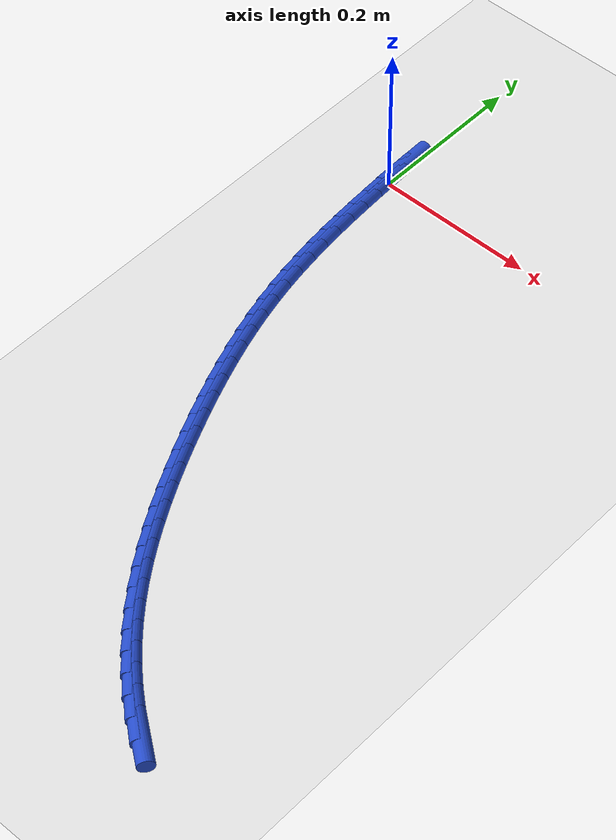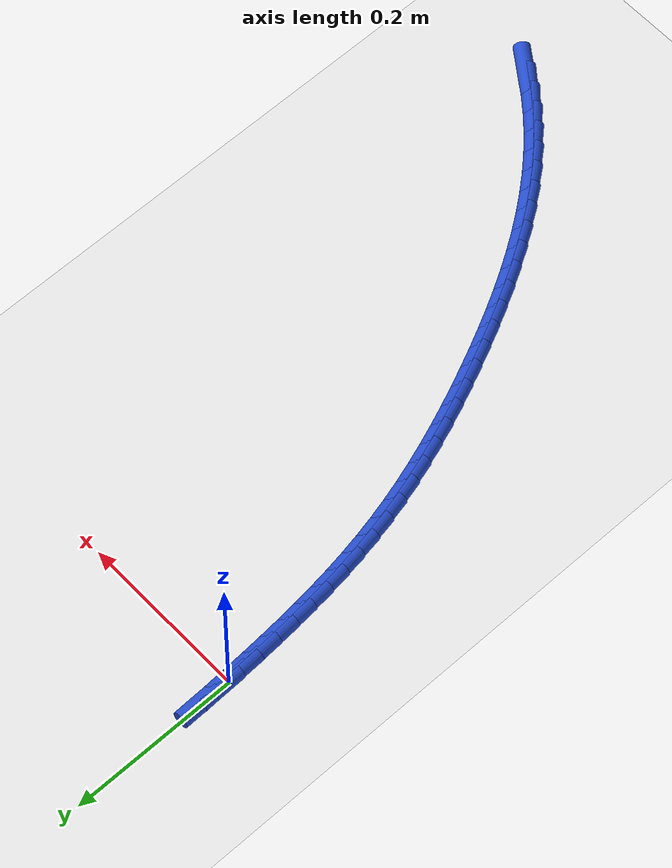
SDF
<sdf version="1.6">
 <world name="default">
  <model name="ground_plane">
   <static>1</static>
   <link name="link">
    <collision name="collision">
     <geometry><plane><normal>0 0 1</normal><size>100 100</size></plane></geometry>
     <surface><friction><ode><mu>100</mu><mu2>50</mu2></ode></friction></surface>
    </collision>
    <visual name="visual">
     <cast_shadows>0</cast_shadows>
     <geometry><plane><normal>0 0 1</normal><size>100 100</size></plane></geometry>
     <material>
      <script><uri>file://media/materials/scripts/gazebo.material</uri><name>Gazebo/WhiteGlow</name></script>
     </material>
    </visual>
   </link>
  </model>
  <model name="line">
   <link name="link_0">
    <pose>-7.806255641895632e-18 -2.7755575615628914e-17 0.01 0 1.57 -1.5313961069417978</pose>
    <collision name="collision">
     <geometry><cylinder><radius>0.01</radius><length>0.08</length></cylinder></geometry>
    </collision>
    <visual name="visual">
     <material>
      <script><name>Gazebo/Blue</name><uri>file://media/materials/scripts/gazebo.material</uri></script>
     </material>
     <geometry><cylinder><radius>0.01</radius><length>0.08</length></cylinder></geometry>
    </visual>
   </link>
   <link name="link_1">
    <pose>-0.0010407498841887648 0.026401154278248604 0.01 0 1.57 -1.5477498399603729</pose>
    <collision name="collision">
     <geometry><cylinder><radius>0.01</radius><length>0.08</length></cylinder></geometry>
    </collision>
    <visual name="visual">
     <material>
      <script><name>Gazebo/Blue</name><uri>file://media/materials/scripts/gazebo.material</uri></script>
     </material>
     <geometry><cylinder><radius>0.01</radius><length>0.08</length></cylinder></geometry>
    </visual>
   </link>
   <link name="link_248">
    <pose>0.3231307571067282 -0.7305806188301729 0.01 0 1.57 -0.6294634969739159</pose>
    <collision name="collision">
     <geometry><cylinder><radius>0.01</radius><length>0.08</length></cylinder></geometry>
    </collision>
    <visual name="visual">
     <material>
      <script><name>Gazebo/Blue</name><uri>file://media/materials/scripts/gazebo.material</uri></script>
     </material>
     <geometry><cylinder><radius>0.01</radius><length>0.08</length></cylinder></geometry>
    </visual>
   </link>
   <link name="link_249">
    <pose>0.30178307036011076 -0.7150332407911966 0.01 0 1.57 -0.6848213265395684</pose>
    <collision name="collision">
     <geometry><cylinder><radius>0.01</radius><length>0.08</length></cylinder></geometry>
    </collision>
    <visual name="visual">
     <material>
      <script><name>Gazebo/Blue</name><uri>file://media/materials/scripts/gazebo.material</uri></script>
     </material>
     <geometry><cylinder><radius>0.01</radius><length>0.08</length></cylinder></geometry>
    </visual>
   </link>
   <link name="link_250">
    <pose>0.2815213969309099 -0.698486204768513 0.01 0 1.57 -0.7378898531658162</pose>
    <collision name="collision">
     <geometry><cylinder><radius>0.01</radius><length>0.08</length></cylinder></geometry>
    </collision>
    <visual name="visual">
     <material>
      <script><name>Gazebo/Blue</name><uri>file://media/materials/scripts/gazebo.material</uri></script>
     </material>
     <geometry><cylinder><radius>0.01</radius><length>0.08</length></cylinder></geometry>
    </visual>
   </link>
   <link name="link_251">
    <pose>0.2622945949332053 -0.6810046671964006 0.01 0 1.57 -0.7883442762952446</pose>
    <collision name="collision">
     <geometry><cylinder><radius>0.01</radius><length>0.08</length></cylinder></geometry>
    </collision>
    <visual name="visual">
     <material>
      <script><name>Gazebo/Blue</name><uri>file://media/materials/scripts/gazebo.material</uri></script>
     </material>
     <geometry><cylinder><radius>0.01</radius><length>0.08</length></cylinder></geometry>
    </visual>
   </link>
   <link name="link_252">
    <pose>0.24405152248107598 -0.6626537845091377 0.01 0 1.57 -0.8359394381130583</pose>
    <collision name="collision">
     <geometry><cylinder><radius>0.01</radius><length>0.08</length></cylinder></geometry>
    </collision>
    <visual name="visual">
     <material>
      <script><name>Gazebo/Blue</name><uri>file://media/materials/scripts/gazebo.material</uri></script>
     </material>
     <geometry><cylinder><radius>0.01</radius><length>0.08</length></cylinder></geometry>
    </visual>
   </link>
   <link name="link_253">
    <pose>0.22674103768860293 -0.6434987131410044 0.01 0 1.57 -0.8805058639360278</pose>
    <collision name="collision">
     <geometry><cylinder><radius>0.01</radius><length>0.08</length></cylinder></geometry>
    </collision>
    <visual name="visual">
     <material>
      <script><name>Gazebo/Blue</name><uri>file://media/materials/scripts/gazebo.material</uri></script>
     </material>
     <geometry><cylinder><radius>0.01</radius><length>0.08</length></cylinder></geometry>
    </visual>
   </link>
   <link name="link_254">
    <pose>0.2103119986698654 -0.6236046095262786 0.01 0 1.57 -0.9219414898770469</pose>
    <collision name="collision">
     <geometry><cylinder><radius>0.01</radius><length>0.08</length></cylinder></geometry>
    </collision>
    <visual name="visual">
     <material>
      <script><name>Gazebo/Blue</name><uri>file://media/materials/scripts/gazebo.material</uri></script>
     </material>
     <geometry><cylinder><radius>0.01</radius><length>0.08</length></cylinder></geometry>
    </visual>
   </link>
   <link name="link_255">
    <pose>0.194713263538943 -0.6030366300992392 0.01 0 1.57 -0.9602008214332004</pose>
    <collision name="collision">
     <geometry><cylinder><radius>0.01</radius><length>0.08</length></cylinder></geometry>
    </collision>
    <visual name="visual">
     <material>
      <script><name>Gazebo/Blue</name><uri>file://media/materials/scripts/gazebo.material</uri></script>
     </material>
     <geometry><cylinder><radius>0.01</radius><length>0.08</length></cylinder></geometry>
    </visual>
   </link>
   <link name="link_256">
    <pose>0.17989369040991565 -0.5818599312941654 0.01 0 1.57 -0.9952830658638413</pose>
    <collision name="collision">
     <geometry><cylinder><radius>0.01</radius><length>0.08</length></cylinder></geometry>
    </collision>
    <visual name="visual">
     <material>
      <script><name>Gazebo/Blue</name><uri>file://media/materials/scripts/gazebo.material</uri></script>
     </material>
     <geometry><cylinder><radius>0.01</radius><length>0.08</length></cylinder></geometry>
    </visual>
   </link>
   <link name="link_257">
    <pose>0.165802137396863 -0.5601396695453357 0.01 0 1.57 -1.0272204137376084</pose>
    <collision name="collision">
     <geometry><cylinder><radius>0.01</radius><length>0.08</length></cylinder></geometry>
    </collision>
    <visual name="visual">
     <material>
      <script><name>Gazebo/Blue</name><uri>file://media/materials/scripts/gazebo.material</uri></script>
     </material>
     <geometry><cylinder><radius>0.01</radius><length>0.08</length></cylinder></geometry>
    </visual>
   </link>
   <link name="link_258">
    <pose>0.15238746261386485 -0.5379410012870287 0.01 0 1.57 -1.0560672382282705</pose>
    <collision name="collision">
     <geometry><cylinder><radius>0.01</radius><length>0.08</length></cylinder></geometry>
    </collision>
    <visual name="visual">
     <material>
      <script><name>Gazebo/Blue</name><uri>file://media/materials/scripts/gazebo.material</uri></script>
     </material>
     <geometry><cylinder><radius>0.01</radius><length>0.08</length></cylinder></geometry>
    </visual>
   </link>
   <link name="link_259">
    <pose>0.13959852417500096 -0.5153290829535236 0.01 0 1.57 -1.0818906183020056</pose>
    <collision name="collision">
     <geometry><cylinder><radius>0.01</radius><length>0.08</length></cylinder></geometry>
    </collision>
    <visual name="visual">
     <material>
      <script><name>Gazebo/Blue</name><uri>file://media/materials/scripts/gazebo.material</uri></script>
     </material>
     <geometry><cylinder><radius>0.01</radius><length>0.08</length></cylinder></geometry>
    </visual>
   </link>
   <link name="link_260">
    <pose>0.12738418019435105 -0.49236907097909915 0.01 0 1.57 -1.1047623129641644</pose>
    <collision name="collision">
     <geometry><cylinder><radius>0.01</radius><length>0.08</length></cylinder></geometry>
    </collision>
    <visual name="visual">
     <material>
      <script><name>Gazebo/Blue</name><uri>file://media/materials/scripts/gazebo.material</uri></script>
     </material>
     <geometry><cylinder><radius>0.01</radius><length>0.08</length></cylinder></geometry>
    </visual>
   </link>
   <link name="link_261">
    <pose>0.11569328878599457 -0.46912612179803337 0.01 0 1.57 -1.1247521244726826</pose>
    <collision name="collision">
     <geometry><cylinder><radius>0.01</radius><length>0.08</length></cylinder></geometry>
    </collision>
    <visual name="visual">
     <material>
      <script><name>Gazebo/Blue</name><uri>file://media/materials/scripts/gazebo.material</uri></script>
     </material>
     <geometry><cylinder><radius>0.01</radius><length>0.08</length></cylinder></geometry>
    </visual>
   </link>
   <link name="link_262">
    <pose>0.10447470806401202 -0.4456653918446065 0.01 0 1.57 -1.1420171484466881</pose>
    <collision name="collision">
     <geometry><cylinder><radius>0.01</radius><length>0.08</length></cylinder></geometry>
    </collision>
    <visual name="visual">
     <material>
      <script><name>Gazebo/Blue</name><uri>file://media/materials/scripts/gazebo.material</uri></script>
     </material>
     <geometry><cylinder><radius>0.01</radius><length>0.08</length></cylinder></geometry>
    </visual>
   </link>
   <link name="link_263">
    <pose>0.09367936650729065 -0.42205065406609027 0.01 0 1.57 -1.1587808933841062</pose>
    <collision name="collision">
     <geometry><cylinder><radius>0.01</radius><length>0.08</length></cylinder></geometry>
    </collision>
    <visual name="visual">
     <material>
      <script><name>Gazebo/Blue</name><uri>file://media/materials/scripts/gazebo.material</uri></script>
     </material>
     <geometry><cylinder><radius>0.01</radius><length>0.08</length></cylinder></geometry>
    </visual>
   </link>
   <link name="link_264">
    <pose>0.08330571626151337 -0.3983139245062157 0.01 0 1.57 -1.1772549622798039</pose>
    <collision name="collision">
     <geometry><cylinder><radius>0.01</radius><length>0.08</length></cylinder></geometry>
    </collision>
    <visual name="visual">
     <material>
      <script><name>Gazebo/Blue</name><uri>file://media/materials/scripts/gazebo.material</uri></script>
     </material>
     <geometry><cylinder><radius>0.01</radius><length>0.08</length></cylinder></geometry>
    </visual>
   </link>
   <link name="link_265">
    <pose>0.0733996805743234 -0.3744554974307524 0.01 0 1.57 -1.1975740225772993</pose>
    <collision name="collision">
     <geometry><cylinder><radius>0.01</radius><length>0.08</length></cylinder></geometry>
    </collision>
    <visual name="visual">
     <material>
      <script><name>Gazebo/Blue</name><uri>file://media/materials/scripts/gazebo.material</uri></script>
     </material>
     <geometry><cylinder><radius>0.01</radius><length>0.08</length></cylinder></geometry>
    </visual>
   </link>
   <link name="link_266">
    <pose>0.06400924254520082 -0.35047429064358254 0.01 0 1.57 -1.219778278962894</pose>
    <collision name="collision">
     <geometry><cylinder><radius>0.01</radius><length>0.08</length></cylinder></geometry>
    </collision>
    <visual name="visual">
     <material>
      <script><name>Gazebo/Blue</name><uri>file://media/materials/scripts/gazebo.material</uri></script>
     </material>
     <geometry><cylinder><radius>0.01</radius><length>0.08</length></cylinder></geometry>
    </visual>
   </link>
   <link name="link_267">
    <pose>0.05518238527362583 -0.32636922194858836 0.01 0 1.57 -1.2439056441414968</pose>
    <collision name="collision">
     <geometry><cylinder><radius>0.01</radius><length>0.08</length></cylinder></geometry>
    </collision>
    <visual name="visual">
     <material>
      <script><name>Gazebo/Blue</name><uri>file://media/materials/scripts/gazebo.material</uri></script>
     </material>
     <geometry><cylinder><radius>0.01</radius><length>0.08</length></cylinder></geometry>
    </visual>
   </link>
   <link name="link_268">
    <pose>0.046967091859078526 -0.3021392091496521 0.01 0 1.57 -1.2699893580499169</pose>
    <collision name="collision">
     <geometry><cylinder><radius>0.01</radius><length>0.08</length></cylinder></geometry>
    </collision>
    <visual name="visual">
     <material>
      <script><name>Gazebo/Blue</name><uri>file://media/materials/scripts/gazebo.material</uri></script>
     </material>
     <geometry><cylinder><radius>0.01</radius><length>0.08</length></cylinder></geometry>
    </visual>
   </link>
   <link name="link_269">
    <pose>0.039411345401039063 -0.27778317005065584 0.01 0 1.57 -1.2980552279116246</pose>
    <collision name="collision">
     <geometry><cylinder><radius>0.01</radius><length>0.08</length></cylinder></geometry>
    </collision>
    <visual name="visual">
     <material>
      <script><name>Gazebo/Blue</name><uri>file://media/materials/scripts/gazebo.material</uri></script>
     </material>
     <geometry><cylinder><radius>0.01</radius><length>0.08</length></cylinder></geometry>
    </visual>
   </link>
   <link name="link_270">
    <pose>0.032563128998987376 -0.2533000224554813 0.01 0 1.57 -1.3281184992201023</pose>
    <collision name="collision">
     <geometry><cylinder><radius>0.01</radius><length>0.08</length></cylinder></geometry>
    </collision>
    <visual name="visual">
     <material>
      <script><name>Gazebo/Blue</name><uri>file://media/materials/scripts/gazebo.material</uri></script>
     </material>
     <geometry><cylinder><radius>0.01</radius><length>0.08</length></cylinder></geometry>
    </visual>
   </link>
   <link name="link_271">
    <pose>0.02647042575240403 -0.228688684168012 0.01 0 1.57 -1.3598567806479787</pose>
    <collision name="collision">
     <geometry><cylinder><radius>0.01</radius><length>0.08</length></cylinder></geometry>
    </collision>
    <visual name="visual">
     <material>
      <script><name>Gazebo/Blue</name><uri>file://media/materials/scripts/gazebo.material</uri></script>
     </material>
     <geometry><cylinder><radius>0.01</radius><length>0.08</length></cylinder></geometry>
    </visual>
   </link>
   <link name="link_272">
    <pose>0.021172678313014857 -0.20394729182919027 0.01 0 1.57 -1.3903991742608948</pose>
    <collision name="collision">
     <geometry><cylinder><radius>0.01</radius><length>0.08</length></cylinder></geometry>
    </collision>
    <visual name="visual">
     <material>
      <script><name>Gazebo/Blue</name><uri>file://media/materials/scripts/gazebo.material</uri></script>
     </material>
     <geometry><cylinder><radius>0.01</radius><length>0.08</length></cylinder></geometry>
    </visual>
   </link>
   <link name="link_273">
    <pose>0.01663504838478031 -0.17906718787839537 0.01 0 1.57 -1.4181603901816322</pose>
    <collision name="collision">
     <geometry><cylinder><radius>0.01</radius><length>0.08</length></cylinder></geometry>
    </collision>
    <visual name="visual">
     <material>
      <script><name>Gazebo/Blue</name><uri>file://media/materials/scripts/gazebo.material</uri></script>
     </material>
     <geometry><cylinder><radius>0.01</radius><length>0.08</length></cylinder></geometry>
    </visual>
   </link>
   <link name="link_274">
    <pose>0.012784473161626213 -0.15403621850147609 0.01 0 1.57 -1.4430174755052716</pose>
    <collision name="collision">
     <geometry><cylinder><radius>0.01</radius><length>0.08</length></cylinder></geometry>
    </collision>
    <visual name="visual">
     <material>
      <script><name>Gazebo/Blue</name><uri>file://media/materials/scripts/gazebo.material</uri></script>
     </material>
     <geometry><cylinder><radius>0.01</radius><length>0.08</length></cylinder></geometry>
    </visual>
   </link>
   <link name="link_275">
    <pose>0.009547574596599155 -0.12884220105037275 0.01 0 1.57 -1.4648999101912104</pose>
    <collision name="collision">
     <geometry><cylinder><radius>0.01</radius><length>0.08</length></cylinder></geometry>
    </collision>
    <visual name="visual">
     <material>
      <script><name>Gazebo/Blue</name><uri>file://media/materials/scripts/gazebo.material</uri></script>
     </material>
     <geometry><cylinder><radius>0.01</radius><length>0.08</length></cylinder></geometry>
    </visual>
   </link>
   <link name="link_276">
    <pose>0.0068509746427457205 -0.10347295287702547 0.01 0 1.57 -1.483772130330488</pose>
    <collision name="collision">
     <geometry><cylinder><radius>0.01</radius><length>0.08</length></cylinder></geometry>
    </collision>
    <visual name="visual">
     <material>
      <script><name>Gazebo/Blue</name><uri>file://media/materials/scripts/gazebo.material</uri></script>
     </material>
     <geometry><cylinder><radius>0.01</radius><length>0.08</length></cylinder></geometry>
    </visual>
   </link>
   <link name="link_277">
    <pose>0.004621295253112503 -0.07791629133337451 0.01 0 1.57 -1.4996277639153708</pose>
    <collision name="collision">
     <geometry><cylinder><radius>0.01</radius><length>0.08</length></cylinder></geometry>
    </collision>
    <visual name="visual">
     <material>
      <script><name>Gazebo/Blue</name><uri>file://media/materials/scripts/gazebo.material</uri></script>
     </material>
     <geometry><cylinder><radius>0.01</radius><length>0.08</length></cylinder></geometry>
    </visual>
   </link>
   <link name="link_278">
    <pose>0.002785158380746092 -0.05216003377136001 0.01 0 1.57 -1.5124841102657494</pose>
    <collision name="collision">
     <geometry><cylinder><radius>0.01</radius><length>0.08</length></cylinder></geometry>
    </collision>
    <visual name="visual">
     <material>
      <script><name>Gazebo/Blue</name><uri>file://media/materials/scripts/gazebo.material</uri></script>
     </material>
     <geometry><cylinder><radius>0.01</radius><length>0.08</length></cylinder></geometry>
    </visual>
   </link>
   <link name="link_279">
    <pose>0.001269185978693031 -0.02619199754292132 0.01 0 1.57 -1.5223771869609308</pose>
    <collision name="collision">
     <geometry><cylinder><radius>0.01</radius><length>0.08</length></cylinder></geometry>
    </collision>
    <visual name="visual">
     <material>
      <script><name>Gazebo/Blue</name><uri>file://media/materials/scripts/gazebo.material</uri></script>
     </material>
     <geometry><cylinder><radius>0.01</radius><length>0.08</length></cylinder></geometry>
    </visual>
   </link>
   <link name="link_280">
    <pose>3.469446951953614e-18 -2.42861286636753e-16 0.01 0 1.57 -1.5293575325926798</pose>
    <collision name="collision">
     <geometry><cylinder><radius>0.01</radius><length>0.08</length></cylinder></geometry>
    </collision>
    <visual name="visual">
     <material>
      <script><name>Gazebo/Blue</name><uri>file://media/materials/scripts/gazebo.material</uri></script>
     </material>
     <geometry><cylinder><radius>0.01</radius><length>0.08</length></cylinder></geometry>
    </visual>
   </link>
  </model>
 </world>
</sdf>
